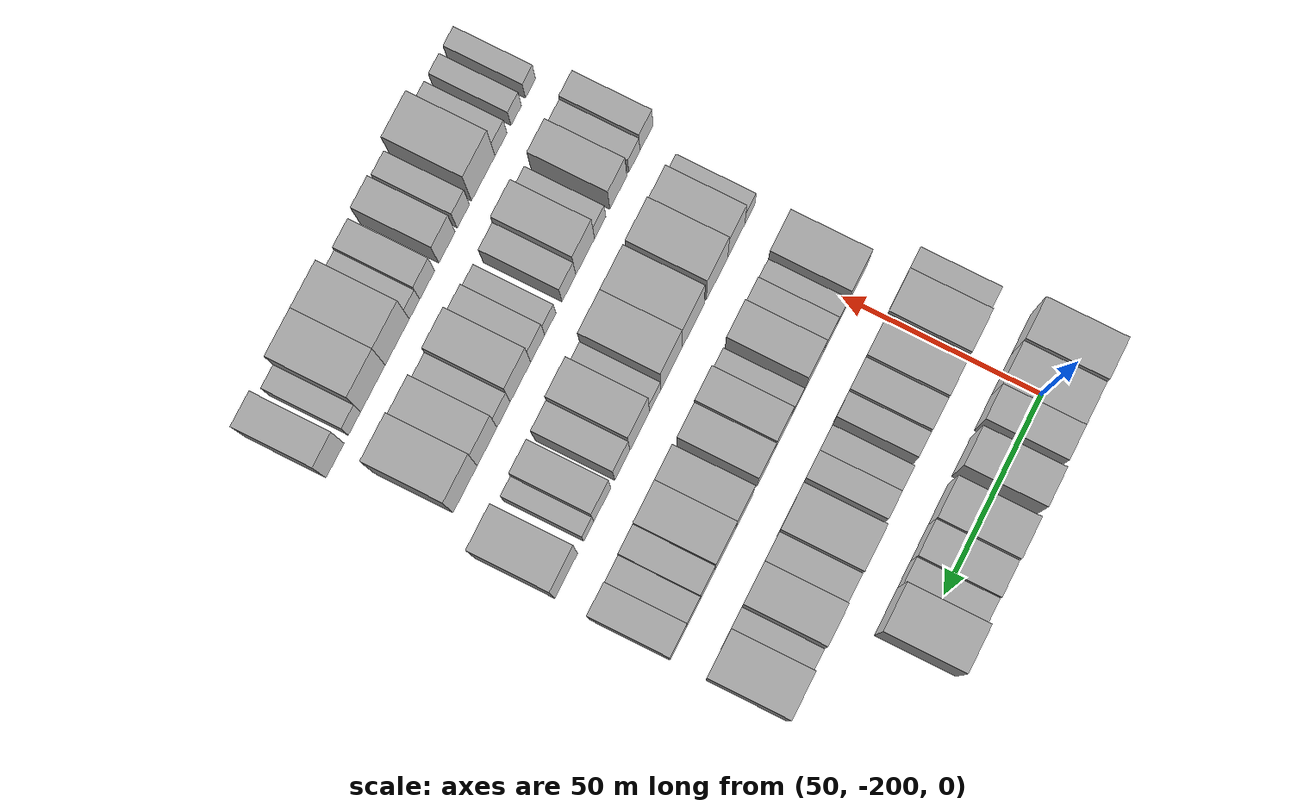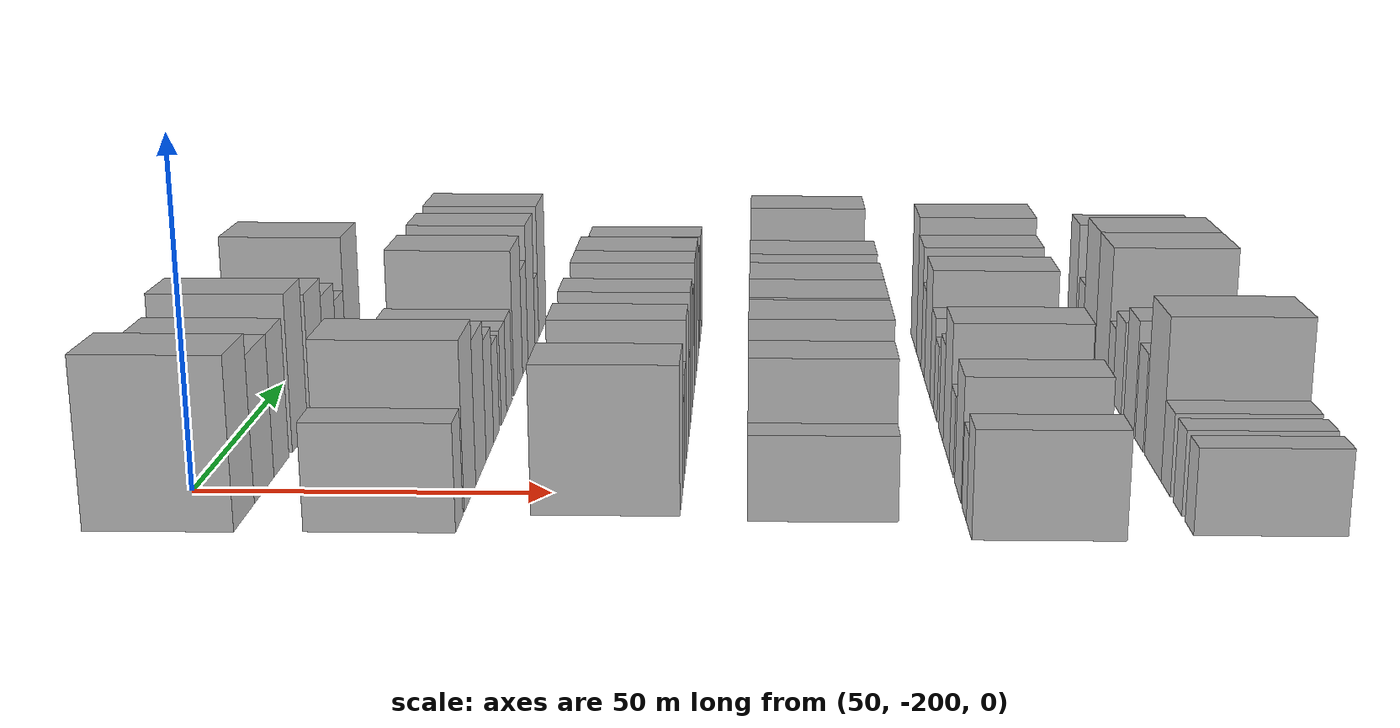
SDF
<sdf version="1.6">
 <world name="default">
  <model name="building_38">
   <static>1</static>
   <pose>50.0000 -210.2495 0 0.000000 0.000000 0.000000</pose>
   <link name="link">
    <pose>0 0 12.00 0 0 0</pose>
    <collision name="collision"><geometry><box><size>20.0000 10.3031 24.0000</size></box></geometry></collision>
    <visual name="visual">
     <cast_shadows>0</cast_shadows>
     <geometry><box><size>20.0000 10.3031 24.0000</size></box></geometry>
     <material>
      <script>
       <uri>model://HANNAS_wall/materials/scripts</uri>
       <uri>model://HANNAS_wall/materials/textures</uri>
       <name>vrc/HANNAS_wall</name>
      </script>
     </material>
    </visual>
   </link>
  </model>
  <model name="building_39">
   <static>1</static>
   <pose>50.0000 -199.8513 0 0.000000 0.000000 0.000000</pose>
   <link name="link">
    <pose>0 0 10.50 0 0 0</pose>
    <collision name="collision"><geometry><box><size>20.0000 10.4934 21.0000</size></box></geometry></collision>
    <visual name="visual">
     <cast_shadows>0</cast_shadows>
     <geometry><box><size>20.0000 10.4934 21.0000</size></box></geometry>
     <material>
      <script>
       <uri>model://HANNAS_wall/materials/scripts</uri>
       <uri>model://HANNAS_wall/materials/textures</uri>
       <name>vrc/HANNAS_wall</name>
      </script>
     </material>
    </visual>
   </link>
  </model>
  <model name="building_40">
   <static>1</static>
   <pose>50.0000 -190.2951 0 0.000000 0.000000 0.000000</pose>
   <link name="link">
    <pose>0 0 10.50 0 0 0</pose>
    <collision name="collision"><geometry><box><size>20.0000 8.6191 21.0000</size></box></geometry></collision>
    <visual name="visual">
     <cast_shadows>0</cast_shadows>
     <geometry><box><size>20.0000 8.6191 21.0000</size></box></geometry>
     <material>
      <script>
       <uri>model://HANNAS_wall/materials/scripts</uri>
       <uri>model://HANNAS_wall/materials/textures</uri>
       <name>vrc/HANNAS_wall</name>
      </script>
     </material>
    </visual>
   </link>
  </model>
  <model name="building_41">
   <static>1</static>
   <pose>50.0000 -179.1651 0 0.000000 0.000000 0.000000</pose>
   <link name="link">
    <pose>0 0 12.00 0 0 0</pose>
    <collision name="collision"><geometry><box><size>20.0000 9.6410 24.0000</size></box></geometry></collision>
    <visual name="visual">
     <cast_shadows>0</cast_shadows>
     <geometry><box><size>20.0000 9.6410 24.0000</size></box></geometry>
     <material>
      <script>
       <uri>model://HANNAS_wall/materials/scripts</uri>
       <uri>model://HANNAS_wall/materials/textures</uri>
       <name>vrc/HANNAS_wall</name>
      </script>
     </material>
    </visual>
   </link>
  </model>
  <model name="building_42">
   <static>1</static>
   <pose>50.0000 -167.2363 0 0.000000 0.000000 0.000000</pose>
   <link name="link">
    <pose>0 0 10.50 0 0 0</pose>
    <collision name="collision"><geometry><box><size>20.0000 10.2165 21.0000</size></box></geometry></collision>
    <visual name="visual">
     <cast_shadows>0</cast_shadows>
     <geometry><box><size>20.0000 10.2165 21.0000</size></box></geometry>
     <material>
      <script>
       <uri>model://HANNAS_wall/materials/scripts</uri>
       <uri>model://HANNAS_wall/materials/textures</uri>
       <name>vrc/HANNAS_wall</name>
      </script>
     </material>
    </visual>
   </link>
  </model>
  <model name="building_43">
   <static>1</static>
   <pose>50.0000 -157.6672 0 0.000000 0.000000 0.000000</pose>
   <link name="link">
    <pose>0 0 9.00 0 0 0</pose>
    <collision name="collision"><geometry><box><size>20.0000 8.9216 18.0000</size></box></geometry></collision>
    <visual name="visual">
     <cast_shadows>0</cast_shadows>
     <geometry><box><size>20.0000 8.9216 18.0000</size></box></geometry>
     <material>
      <script>
       <uri>model://HANNAS_wall/materials/scripts</uri>
       <uri>model://HANNAS_wall/materials/textures</uri>
       <name>vrc/HANNAS_wall</name>
      </script>
     </material>
    </visual>
   </link>
  </model>
  <model name="building_44">
   <static>1</static>
   <pose>50.0000 -149.8842 0 0.000000 0.000000 0.000000</pose>
   <link name="link">
    <pose>0 0 7.50 0 0 0</pose>
    <collision name="collision"><geometry><box><size>20.0000 6.6444 15.0000</size></box></geometry></collision>
    <visual name="visual">
     <cast_shadows>0</cast_shadows>
     <geometry><box><size>20.0000 6.6444 15.0000</size></box></geometry>
     <material>
      <script>
       <uri>model://HANNAS_wall/materials/scripts</uri>
       <uri>model://HANNAS_wall/materials/textures</uri>
       <name>vrc/HANNAS_wall</name>
      </script>
     </material>
    </visual>
   </link>
  </model>
  <model name="building_45">
   <static>1</static>
   <pose>50.0000 -140.6730 0 0.000000 0.000000 0.000000</pose>
   <link name="link">
    <pose>0 0 12.00 0 0 0</pose>
    <collision name="collision"><geometry><box><size>20.0000 11.7782 24.0000</size></box></geometry></collision>
    <visual name="visual">
     <cast_shadows>0</cast_shadows>
     <geometry><box><size>20.0000 11.7782 24.0000</size></box></geometry>
     <material>
      <script>
       <uri>model://HANNAS_wall/materials/scripts</uri>
       <uri>model://HANNAS_wall/materials/textures</uri>
       <name>vrc/HANNAS_wall</name>
      </script>
     </material>
    </visual>
   </link>
  </model>
  <model name="building_142">
   <static>1</static>
   <pose>79.0000 -211.9644 0 0.000000 0.000000 0.000000</pose>
   <link name="link">
    <pose>0 0 7.50 0 0 0</pose>
    <collision name="collision"><geometry><box><size>20.0000 6.2238 15.0000</size></box></geometry></collision>
    <visual name="visual">
     <cast_shadows>0</cast_shadows>
     <geometry><box><size>20.0000 6.2238 15.0000</size></box></geometry>
     <material>
      <script>
       <uri>model://HANNAS_wall/materials/scripts</uri>
       <uri>model://HANNAS_wall/materials/textures</uri>
       <name>vrc/HANNAS_wall</name>
      </script>
     </material>
    </visual>
   </link>
  </model>
  <model name="building_143">
   <static>1</static>
   <pose>79.0000 -202.5418 0 0.000000 0.000000 0.000000</pose>
   <link name="link">
    <pose>0 0 12.00 0 0 0</pose>
    <collision name="collision"><geometry><box><size>20.0000 10.6214 24.0000</size></box></geometry></collision>
    <visual name="visual">
     <cast_shadows>0</cast_shadows>
     <geometry><box><size>20.0000 10.6214 24.0000</size></box></geometry>
     <material>
      <script>
       <uri>model://HANNAS_wall/materials/scripts</uri>
       <uri>model://HANNAS_wall/materials/textures</uri>
       <name>vrc/HANNAS_wall</name>
      </script>
     </material>
    </visual>
   </link>
  </model>
  <model name="building_144">
   <static>1</static>
   <pose>79.0000 -192.1411 0 0.000000 0.000000 0.000000</pose>
   <link name="link">
    <pose>0 0 10.50 0 0 0</pose>
    <collision name="collision"><geometry><box><size>20.0000 10.1802 21.0000</size></box></geometry></collision>
    <visual name="visual">
     <cast_shadows>0</cast_shadows>
     <geometry><box><size>20.0000 10.1802 21.0000</size></box></geometry>
     <material>
      <script>
       <uri>model://HANNAS_wall/materials/scripts</uri>
       <uri>model://HANNAS_wall/materials/textures</uri>
       <name>vrc/HANNAS_wall</name>
      </script>
     </material>
    </visual>
   </link>
  </model>
  <model name="building_145">
   <static>1</static>
   <pose>79.0000 -183.0988 0 0.000000 0.000000 0.000000</pose>
   <link name="link">
    <pose>0 0 9.00 0 0 0</pose>
    <collision name="collision"><geometry><box><size>20.0000 7.9043 18.0000</size></box></geometry></collision>
    <visual name="visual">
     <cast_shadows>0</cast_shadows>
     <geometry><box><size>20.0000 7.9043 18.0000</size></box></geometry>
     <material>
      <script>
       <uri>model://HANNAS_wall/materials/scripts</uri>
       <uri>model://HANNAS_wall/materials/textures</uri>
       <name>vrc/HANNAS_wall</name>
      </script>
     </material>
    </visual>
   </link>
  </model>
  <model name="building_146">
   <static>1</static>
   <pose>79.0000 -175.9939 0 0.000000 0.000000 0.000000</pose>
   <link name="link">
    <pose>0 0 7.50 0 0 0</pose>
    <collision name="collision"><geometry><box><size>20.0000 6.3055 15.0000</size></box></geometry></collision>
    <visual name="visual">
     <cast_shadows>0</cast_shadows>
     <geometry><box><size>20.0000 6.3055 15.0000</size></box></geometry>
     <material>
      <script>
       <uri>model://HANNAS_wall/materials/scripts</uri>
       <uri>model://HANNAS_wall/materials/textures</uri>
       <name>vrc/HANNAS_wall</name>
      </script>
     </material>
    </visual>
   </link>
  </model>
  <model name="building_147">
   <static>1</static>
   <pose>79.0000 -167.7373 0 0.000000 0.000000 0.000000</pose>
   <link name="link">
    <pose>0 0 7.50 0 0 0</pose>
    <collision name="collision"><geometry><box><size>20.0000 6.2077 15.0000</size></box></geometry></collision>
    <visual name="visual">
     <cast_shadows>0</cast_shadows>
     <geometry><box><size>20.0000 6.2077 15.0000</size></box></geometry>
     <material>
      <script>
       <uri>model://HANNAS_wall/materials/scripts</uri>
       <uri>model://HANNAS_wall/materials/textures</uri>
       <name>vrc/HANNAS_wall</name>
      </script>
     </material>
    </visual>
   </link>
  </model>
  <model name="building_148">
   <static>1</static>
   <pose>79.0000 -161.1923 0 0.000000 0.000000 0.000000</pose>
   <link name="link">
    <pose>0 0 7.50 0 0 0</pose>
    <collision name="collision"><geometry><box><size>20.0000 6.8824 15.0000</size></box></geometry></collision>
    <visual name="visual">
     <cast_shadows>0</cast_shadows>
     <geometry><box><size>20.0000 6.8824 15.0000</size></box></geometry>
     <material>
      <script>
       <uri>model://HANNAS_wall/materials/scripts</uri>
       <uri>model://HANNAS_wall/materials/textures</uri>
       <name>vrc/HANNAS_wall</name>
      </script>
     </material>
    </visual>
   </link>
  </model>
  <model name="building_149">
   <static>1</static>
   <pose>79.0000 -150.0903 0 0.000000 0.000000 0.000000</pose>
   <link name="link">
    <pose>0 0 12.00 0 0 0</pose>
    <collision name="collision"><geometry><box><size>20.0000 11.3217 24.0000</size></box></geometry></collision>
    <visual name="visual">
     <cast_shadows>0</cast_shadows>
     <geometry><box><size>20.0000 11.3217 24.0000</size></box></geometry>
     <material>
      <script>
       <uri>model://HANNAS_wall/materials/scripts</uri>
       <uri>model://HANNAS_wall/materials/textures</uri>
       <name>vrc/HANNAS_wall</name>
      </script>
     </material>
    </visual>
   </link>
  </model>
  <model name="building_150">
   <static>1</static>
   <pose>79.0000 -140.6751 0 0.000000 0.000000 0.000000</pose>
   <link name="link">
    <pose>0 0 9.00 0 0 0</pose>
    <collision name="collision"><geometry><box><size>20.0000 7.5086 18.0000</size></box></geometry></collision>
    <visual name="visual">
     <cast_shadows>0</cast_shadows>
     <geometry><box><size>20.0000 7.5086 18.0000</size></box></geometry>
     <material>
      <script>
       <uri>model://HANNAS_wall/materials/scripts</uri>
       <uri>model://HANNAS_wall/materials/textures</uri>
       <name>vrc/HANNAS_wall</name>
      </script>
     </material>
    </visual>
   </link>
  </model>
  <model name="building_151">
   <static>1</static>
   <pose>79.0000 -131.7714 0 0.000000 0.000000 0.000000</pose>
   <link name="link">
    <pose>0 0 12.00 0 0 0</pose>
    <collision name="collision"><geometry><box><size>20.0000 10.2988 24.0000</size></box></geometry></collision>
    <visual name="visual">
     <cast_shadows>0</cast_shadows>
     <geometry><box><size>20.0000 10.2988 24.0000</size></box></geometry>
     <material>
      <script>
       <uri>model://HANNAS_wall/materials/scripts</uri>
       <uri>model://HANNAS_wall/materials/textures</uri>
       <name>vrc/HANNAS_wall</name>
      </script>
     </material>
    </visual>
   </link>
  </model>
  <model name="building_152">
   <static>1</static>
   <pose>79.0000 -123.7827 0 0.000000 0.000000 0.000000</pose>
   <link name="link">
    <pose>0 0 6.00 0 0 0</pose>
    <collision name="collision"><geometry><box><size>20.0000 5.6786 12.0000</size></box></geometry></collision>
    <visual name="visual">
     <cast_shadows>0</cast_shadows>
     <geometry><box><size>20.0000 5.6786 12.0000</size></box></geometry>
     <material>
      <script>
       <uri>model://HANNAS_wall/materials/scripts</uri>
       <uri>model://HANNAS_wall/materials/textures</uri>
       <name>vrc/HANNAS_wall</name>
      </script>
     </material>
    </visual>
   </link>
  </model>
  <model name="building_153">
   <static>1</static>
   <pose>79.0000 -115.1070 0 0.000000 0.000000 0.000000</pose>
   <link name="link">
    <pose>0 0 12.00 0 0 0</pose>
    <collision name="collision"><geometry><box><size>20.0000 11.6727 24.0000</size></box></geometry></collision>
    <visual name="visual">
     <cast_shadows>0</cast_shadows>
     <geometry><box><size>20.0000 11.6727 24.0000</size></box></geometry>
     <material>
      <script>
       <uri>model://HANNAS_wall/materials/scripts</uri>
       <uri>model://HANNAS_wall/materials/textures</uri>
       <name>vrc/HANNAS_wall</name>
      </script>
     </material>
    </visual>
   </link>
  </model>
  <model name="building_254">
   <static>1</static>
   <pose>108.0000 -203.3002 0 0.000000 0.000000 0.000000</pose>
   <link name="link">
    <pose>0 0 10.50 0 0 0</pose>
    <collision name="collision"><geometry><box><size>20.0000 10.4001 21.0000</size></box></geometry></collision>
    <visual name="visual">
     <cast_shadows>0</cast_shadows>
     <geometry><box><size>20.0000 10.4001 21.0000</size></box></geometry>
     <material>
      <script>
       <uri>model://HANNAS_wall/materials/scripts</uri>
       <uri>model://HANNAS_wall/materials/textures</uri>
       <name>vrc/HANNAS_wall</name>
      </script>
     </material>
    </visual>
   </link>
  </model>
  <model name="building_255">
   <static>1</static>
   <pose>108.0000 -195.4995 0 0.000000 0.000000 0.000000</pose>
   <link name="link">
    <pose>0 0 6.00 0 0 0</pose>
    <collision name="collision"><geometry><box><size>20.0000 5.2013 12.0000</size></box></geometry></collision>
    <visual name="visual">
     <cast_shadows>0</cast_shadows>
     <geometry><box><size>20.0000 5.2013 12.0000</size></box></geometry>
     <material>
      <script>
       <uri>model://HANNAS_wall/materials/scripts</uri>
       <uri>model://HANNAS_wall/materials/textures</uri>
       <name>vrc/HANNAS_wall</name>
      </script>
     </material>
    </visual>
   </link>
  </model>
  <model name="building_256">
   <static>1</static>
   <pose>108.0000 -189.5020 0 0.000000 0.000000 0.000000</pose>
   <link name="link">
    <pose>0 0 7.50 0 0 0</pose>
    <collision name="collision"><geometry><box><size>20.0000 6.7937 15.0000</size></box></geometry></collision>
    <visual name="visual">
     <cast_shadows>0</cast_shadows>
     <geometry><box><size>20.0000 6.7937 15.0000</size></box></geometry>
     <material>
      <script>
       <uri>model://HANNAS_wall/materials/scripts</uri>
       <uri>model://HANNAS_wall/materials/textures</uri>
       <name>vrc/HANNAS_wall</name>
      </script>
     </material>
    </visual>
   </link>
  </model>
  <model name="building_257">
   <static>1</static>
   <pose>108.0000 -181.4458 0 0.000000 0.000000 0.000000</pose>
   <link name="link">
    <pose>0 0 10.50 0 0 0</pose>
    <collision name="collision"><geometry><box><size>20.0000 9.3188 21.0000</size></box></geometry></collision>
    <visual name="visual">
     <cast_shadows>0</cast_shadows>
     <geometry><box><size>20.0000 9.3188 21.0000</size></box></geometry>
     <material>
      <script>
       <uri>model://HANNAS_wall/materials/scripts</uri>
       <uri>model://HANNAS_wall/materials/textures</uri>
       <name>vrc/HANNAS_wall</name>
      </script>
     </material>
    </visual>
   </link>
  </model>
  <model name="building_258">
   <static>1</static>
   <pose>108.0000 -172.8283 0 0.000000 0.000000 0.000000</pose>
   <link name="link">
    <pose>0 0 6.00 0 0 0</pose>
    <collision name="collision"><geometry><box><size>20.0000 5.9162 12.0000</size></box></geometry></collision>
    <visual name="visual">
     <cast_shadows>0</cast_shadows>
     <geometry><box><size>20.0000 5.9162 12.0000</size></box></geometry>
     <material>
      <script>
       <uri>model://HANNAS_wall/materials/scripts</uri>
       <uri>model://HANNAS_wall/materials/textures</uri>
       <name>vrc/HANNAS_wall</name>
      </script>
     </material>
    </visual>
   </link>
  </model>
  <model name="building_259">
   <static>1</static>
   <pose>108.0000 -165.6226 0 0.000000 0.000000 0.000000</pose>
   <link name="link">
    <pose>0 0 10.50 0 0 0</pose>
    <collision name="collision"><geometry><box><size>20.0000 8.4951 21.0000</size></box></geometry></collision>
    <visual name="visual">
     <cast_shadows>0</cast_shadows>
     <geometry><box><size>20.0000 8.4951 21.0000</size></box></geometry>
     <material>
      <script>
       <uri>model://HANNAS_wall/materials/scripts</uri>
       <uri>model://HANNAS_wall/materials/textures</uri>
       <name>vrc/HANNAS_wall</name>
      </script>
     </material>
    </visual>
   </link>
  </model>
  <model name="building_260">
   <static>1</static>
   <pose>108.0000 -157.0530 0 0.000000 0.000000 0.000000</pose>
   <link name="link">
    <pose>0 0 9.00 0 0 0</pose>
    <collision name="collision"><geometry><box><size>20.0000 8.6441 18.0000</size></box></geometry></collision>
    <visual name="visual">
     <cast_shadows>0</cast_shadows>
     <geometry><box><size>20.0000 8.6441 18.0000</size></box></geometry>
     <material>
      <script>
       <uri>model://HANNAS_wall/materials/scripts</uri>
       <uri>model://HANNAS_wall/materials/textures</uri>
       <name>vrc/HANNAS_wall</name>
      </script>
     </material>
    </visual>
   </link>
  </model>
  <model name="building_261">
   <static>1</static>
   <pose>108.0000 -146.4417 0 0.000000 0.000000 0.000000</pose>
   <link name="link">
    <pose>0 0 10.50 0 0 0</pose>
    <collision name="collision"><geometry><box><size>20.0000 8.5784 21.0000</size></box></geometry></collision>
    <visual name="visual">
     <cast_shadows>0</cast_shadows>
     <geometry><box><size>20.0000 8.5784 21.0000</size></box></geometry>
     <material>
      <script>
       <uri>model://HANNAS_wall/materials/scripts</uri>
       <uri>model://HANNAS_wall/materials/textures</uri>
       <name>vrc/HANNAS_wall</name>
      </script>
     </material>
    </visual>
   </link>
  </model>
  <model name="building_262">
   <static>1</static>
   <pose>108.0000 -136.9209 0 0.000000 0.000000 0.000000</pose>
   <link name="link">
    <pose>0 0 10.50 0 0 0</pose>
    <collision name="collision"><geometry><box><size>20.0000 10.4634 21.0000</size></box></geometry></collision>
    <visual name="visual">
     <cast_shadows>0</cast_shadows>
     <geometry><box><size>20.0000 10.4634 21.0000</size></box></geometry>
     <material>
      <script>
       <uri>model://HANNAS_wall/materials/scripts</uri>
       <uri>model://HANNAS_wall/materials/textures</uri>
       <name>vrc/HANNAS_wall</name>
      </script>
     </material>
    </visual>
   </link>
  </model>
  <model name="building_263">
   <static>1</static>
   <pose>108.0000 -128.0794 0 0.000000 0.000000 0.000000</pose>
   <link name="link">
    <pose>0 0 9.00 0 0 0</pose>
    <collision name="collision"><geometry><box><size>20.0000 7.2196 18.0000</size></box></geometry></collision>
    <visual name="visual">
     <cast_shadows>0</cast_shadows>
     <geometry><box><size>20.0000 7.2196 18.0000</size></box></geometry>
     <material>
      <script>
       <uri>model://HANNAS_wall/materials/scripts</uri>
       <uri>model://HANNAS_wall/materials/textures</uri>
       <name>vrc/HANNAS_wall</name>
      </script>
     </material>
    </visual>
   </link>
  </model>
  <model name="building_264">
   <static>1</static>
   <pose>108.0000 -121.1554 0 0.000000 0.000000 0.000000</pose>
   <link name="link">
    <pose>0 0 7.50 0 0 0</pose>
    <collision name="collision"><geometry><box><size>20.0000 6.6282 15.0000</size></box></geometry></collision>
    <visual name="visual">
     <cast_shadows>0</cast_shadows>
     <geometry><box><size>20.0000 6.6282 15.0000</size></box></geometry>
     <material>
      <script>
       <uri>model://HANNAS_wall/materials/scripts</uri>
       <uri>model://HANNAS_wall/materials/textures</uri>
       <name>vrc/HANNAS_wall</name>
      </script>
     </material>
    </visual>
   </link>
  </model>
  <model name="building_265">
   <static>1</static>
   <pose>108.0000 -113.7238 0 0.000000 0.000000 0.000000</pose>
   <link name="link">
    <pose>0 0 9.00 0 0 0</pose>
    <collision name="collision"><geometry><box><size>20.0000 8.2349 18.0000</size></box></geometry></collision>
    <visual name="visual">
     <cast_shadows>0</cast_shadows>
     <geometry><box><size>20.0000 8.2349 18.0000</size></box></geometry>
     <material>
      <script>
       <uri>model://HANNAS_wall/materials/scripts</uri>
       <uri>model://HANNAS_wall/materials/textures</uri>
       <name>vrc/HANNAS_wall</name>
      </script>
     </material>
    </visual>
   </link>
  </model>
  <model name="building_370">
   <static>1</static>
   <pose>137.0000 -207.5998 0 0.000000 0.000000 0.000000</pose>
   <link name="link">
    <pose>0 0 6.00 0 0 0</pose>
    <collision name="collision"><geometry><box><size>20.0000 5.1844 12.0000</size></box></geometry></collision>
    <visual name="visual">
     <cast_shadows>0</cast_shadows>
     <geometry><box><size>20.0000 5.1844 12.0000</size></box></geometry>
     <material>
      <script>
       <uri>model://HANNAS_wall/materials/scripts</uri>
       <uri>model://HANNAS_wall/materials/textures</uri>
       <name>vrc/HANNAS_wall</name>
      </script>
     </material>
    </visual>
   </link>
  </model>
  <model name="building_371">
   <static>1</static>
   <pose>137.0000 -200.6758 0 0.000000 0.000000 0.000000</pose>
   <link name="link">
    <pose>0 0 10.50 0 0 0</pose>
    <collision name="collision"><geometry><box><size>20.0000 8.6635 21.0000</size></box></geometry></collision>
    <visual name="visual">
     <cast_shadows>0</cast_shadows>
     <geometry><box><size>20.0000 8.6635 21.0000</size></box></geometry>
     <material>
      <script>
       <uri>model://HANNAS_wall/materials/scripts</uri>
       <uri>model://HANNAS_wall/materials/textures</uri>
       <name>vrc/HANNAS_wall</name>
      </script>
     </material>
    </visual>
   </link>
  </model>
  <model name="building_372">
   <static>1</static>
   <pose>137.0000 -190.9224 0 0.000000 0.000000 0.000000</pose>
   <link name="link">
    <pose>0 0 12.00 0 0 0</pose>
    <collision name="collision"><geometry><box><size>20.0000 10.8433 24.0000</size></box></geometry></collision>
    <visual name="visual">
     <cast_shadows>0</cast_shadows>
     <geometry><box><size>20.0000 10.8433 24.0000</size></box></geometry>
     <material>
      <script>
       <uri>model://HANNAS_wall/materials/scripts</uri>
       <uri>model://HANNAS_wall/materials/textures</uri>
       <name>vrc/HANNAS_wall</name>
      </script>
     </material>
    </visual>
   </link>
  </model>
  <model name="building_373">
   <static>1</static>
   <pose>137.0000 -178.9751 0 0.000000 0.000000 0.000000</pose>
   <link name="link">
    <pose>0 0 12.00 0 0 0</pose>
    <collision name="collision"><geometry><box><size>20.0000 11.0513 24.0000</size></box></geometry></collision>
    <visual name="visual">
     <cast_shadows>0</cast_shadows>
     <geometry><box><size>20.0000 11.0513 24.0000</size></box></geometry>
     <material>
      <script>
       <uri>model://HANNAS_wall/materials/scripts</uri>
       <uri>model://HANNAS_wall/materials/textures</uri>
       <name>vrc/HANNAS_wall</name>
      </script>
     </material>
    </visual>
   </link>
  </model>
  <model name="building_374">
   <static>1</static>
   <pose>137.0000 -168.0917 0 0.000000 0.000000 0.000000</pose>
   <link name="link">
    <pose>0 0 12.00 0 0 0</pose>
    <collision name="collision"><geometry><box><size>20.0000 10.7155 24.0000</size></box></geometry></collision>
    <visual name="visual">
     <cast_shadows>0</cast_shadows>
     <geometry><box><size>20.0000 10.7155 24.0000</size></box></geometry>
     <material>
      <script>
       <uri>model://HANNAS_wall/materials/scripts</uri>
       <uri>model://HANNAS_wall/materials/textures</uri>
       <name>vrc/HANNAS_wall</name>
      </script>
     </material>
    </visual>
   </link>
  </model>
  <model name="building_375">
   <static>1</static>
   <pose>137.0000 -159.8637 0 0.000000 0.000000 0.000000</pose>
   <link name="link">
    <pose>0 0 6.00 0 0 0</pose>
    <collision name="collision"><geometry><box><size>20.0000 5.7406 12.0000</size></box></geometry></collision>
    <visual name="visual">
     <cast_shadows>0</cast_shadows>
     <geometry><box><size>20.0000 5.7406 12.0000</size></box></geometry>
     <material>
      <script>
       <uri>model://HANNAS_wall/materials/scripts</uri>
       <uri>model://HANNAS_wall/materials/textures</uri>
       <name>vrc/HANNAS_wall</name>
      </script>
     </material>
    </visual>
   </link>
  </model>
  <model name="building_376">
   <static>1</static>
   <pose>137.0000 -152.1276 0 0.000000 0.000000 0.000000</pose>
   <link name="link">
    <pose>0 0 12.00 0 0 0</pose>
    <collision name="collision"><geometry><box><size>20.0000 9.7316 24.0000</size></box></geometry></collision>
    <visual name="visual">
     <cast_shadows>0</cast_shadows>
     <geometry><box><size>20.0000 9.7316 24.0000</size></box></geometry>
     <material>
      <script>
       <uri>model://HANNAS_wall/materials/scripts</uri>
       <uri>model://HANNAS_wall/materials/textures</uri>
       <name>vrc/HANNAS_wall</name>
      </script>
     </material>
    </visual>
   </link>
  </model>
  <model name="building_377">
   <static>1</static>
   <pose>137.0000 -143.5225 0 0.000000 0.000000 0.000000</pose>
   <link name="link">
    <pose>0 0 9.00 0 0 0</pose>
    <collision name="collision"><geometry><box><size>20.0000 7.4785 18.0000</size></box></geometry></collision>
    <visual name="visual">
     <cast_shadows>0</cast_shadows>
     <geometry><box><size>20.0000 7.4785 18.0000</size></box></geometry>
     <material>
      <script>
       <uri>model://HANNAS_wall/materials/scripts</uri>
       <uri>model://HANNAS_wall/materials/textures</uri>
       <name>vrc/HANNAS_wall</name>
      </script>
     </material>
    </visual>
   </link>
  </model>
  <model name="building_378">
   <static>1</static>
   <pose>137.0000 -133.6009 0 0.000000 0.000000 0.000000</pose>
   <link name="link">
    <pose>0 0 9.00 0 0 0</pose>
    <collision name="collision"><geometry><box><size>20.0000 8.3647 18.0000</size></box></geometry></collision>
    <visual name="visual">
     <cast_shadows>0</cast_shadows>
     <geometry><box><size>20.0000 8.3647 18.0000</size></box></geometry>
     <material>
      <script>
       <uri>model://HANNAS_wall/materials/scripts</uri>
       <uri>model://HANNAS_wall/materials/textures</uri>
       <name>vrc/HANNAS_wall</name>
      </script>
     </material>
    </visual>
   </link>
  </model>
  <model name="building_379">
   <static>1</static>
   <pose>137.0000 -126.9675 0 0.000000 0.000000 0.000000</pose>
   <link name="link">
    <pose>0 0 6.00 0 0 0</pose>
    <collision name="collision"><geometry><box><size>20.0000 4.9020 12.0000</size></box></geometry></collision>
    <visual name="visual">
     <cast_shadows>0</cast_shadows>
     <geometry><box><size>20.0000 4.9020 12.0000</size></box></geometry>
     <material>
      <script>
       <uri>model://HANNAS_wall/materials/scripts</uri>
       <uri>model://HANNAS_wall/materials/textures</uri>
       <name>vrc/HANNAS_wall</name>
      </script>
     </material>
    </visual>
   </link>
  </model>
  <model name="building_380">
   <static>1</static>
   <pose>137.0000 -115.9178 0 0.000000 0.000000 0.000000</pose>
   <link name="link">
    <pose>0 0 12.00 0 0 0</pose>
    <collision name="collision"><geometry><box><size>20.0000 11.1974 24.0000</size></box></geometry></collision>
    <visual name="visual">
     <cast_shadows>0</cast_shadows>
     <geometry><box><size>20.0000 11.1974 24.0000</size></box></geometry>
     <material>
      <script>
       <uri>model://HANNAS_wall/materials/scripts</uri>
       <uri>model://HANNAS_wall/materials/textures</uri>
       <name>vrc/HANNAS_wall</name>
      </script>
     </material>
    </visual>
   </link>
  </model>
  <model name="building_481">
   <static>1</static>
   <pose>166.0000 -212.9373 0 0.000000 0.000000 0.000000</pose>
   <link name="link">
    <pose>0 0 7.50 0 0 0</pose>
    <collision name="collision"><geometry><box><size>20.0000 6.5293 15.0000</size></box></geometry></collision>
    <visual name="visual">
     <cast_shadows>0</cast_shadows>
     <geometry><box><size>20.0000 6.5293 15.0000</size></box></geometry>
     <material>
      <script>
       <uri>model://HANNAS_wall/materials/scripts</uri>
       <uri>model://HANNAS_wall/materials/textures</uri>
       <name>vrc/HANNAS_wall</name>
      </script>
     </material>
    </visual>
   </link>
  </model>
  <model name="building_482">
   <static>1</static>
   <pose>166.0000 -206.8613 0 0.000000 0.000000 0.000000</pose>
   <link name="link">
    <pose>0 0 6.00 0 0 0</pose>
    <collision name="collision"><geometry><box><size>20.0000 5.6227 12.0000</size></box></geometry></collision>
    <visual name="visual">
     <cast_shadows>0</cast_shadows>
     <geometry><box><size>20.0000 5.6227 12.0000</size></box></geometry>
     <material>
      <script>
       <uri>model://HANNAS_wall/materials/scripts</uri>
       <uri>model://HANNAS_wall/materials/textures</uri>
       <name>vrc/HANNAS_wall</name>
      </script>
     </material>
    </visual>
   </link>
  </model>
  <model name="building_483">
   <static>1</static>
   <pose>166.0000 -198.7721 0 0.000000 0.000000 0.000000</pose>
   <link name="link">
    <pose>0 0 9.00 0 0 0</pose>
    <collision name="collision"><geometry><box><size>20.0000 8.5557 18.0000</size></box></geometry></collision>
    <visual name="visual">
     <cast_shadows>0</cast_shadows>
     <geometry><box><size>20.0000 8.5557 18.0000</size></box></geometry>
     <material>
      <script>
       <uri>model://HANNAS_wall/materials/scripts</uri>
       <uri>model://HANNAS_wall/materials/textures</uri>
       <name>vrc/HANNAS_wall</name>
      </script>
     </material>
    </visual>
   </link>
  </model>
  <model name="building_484">
   <static>1</static>
   <pose>166.0000 -189.6660 0 0.000000 0.000000 0.000000</pose>
   <link name="link">
    <pose>0 0 6.00 0 0 0</pose>
    <collision name="collision"><geometry><box><size>20.0000 5.6565 12.0000</size></box></geometry></collision>
    <visual name="visual">
     <cast_shadows>0</cast_shadows>
     <geometry><box><size>20.0000 5.6565 12.0000</size></box></geometry>
     <material>
      <script>
       <uri>model://HANNAS_wall/materials/scripts</uri>
       <uri>model://HANNAS_wall/materials/textures</uri>
       <name>vrc/HANNAS_wall</name>
      </script>
     </material>
    </visual>
   </link>
  </model>
  <model name="building_485">
   <static>1</static>
   <pose>166.0000 -182.1705 0 0.000000 0.000000 0.000000</pose>
   <link name="link">
    <pose>0 0 10.50 0 0 0</pose>
    <collision name="collision"><geometry><box><size>20.0000 9.3344 21.0000</size></box></geometry></collision>
    <visual name="visual">
     <cast_shadows>0</cast_shadows>
     <geometry><box><size>20.0000 9.3344 21.0000</size></box></geometry>
     <material>
      <script>
       <uri>model://HANNAS_wall/materials/scripts</uri>
       <uri>model://HANNAS_wall/materials/textures</uri>
       <name>vrc/HANNAS_wall</name>
      </script>
     </material>
    </visual>
   </link>
  </model>
  <model name="building_486">
   <static>1</static>
   <pose>166.0000 -174.0651 0 0.000000 0.000000 0.000000</pose>
   <link name="link">
    <pose>0 0 7.50 0 0 0</pose>
    <collision name="collision"><geometry><box><size>20.0000 6.8764 15.0000</size></box></geometry></collision>
    <visual name="visual">
     <cast_shadows>0</cast_shadows>
     <geometry><box><size>20.0000 6.8764 15.0000</size></box></geometry>
     <material>
      <script>
       <uri>model://HANNAS_wall/materials/scripts</uri>
       <uri>model://HANNAS_wall/materials/textures</uri>
       <name>vrc/HANNAS_wall</name>
      </script>
     </material>
    </visual>
   </link>
  </model>
  <model name="building_487">
   <static>1</static>
   <pose>166.0000 -164.8232 0 0.000000 0.000000 0.000000</pose>
   <link name="link">
    <pose>0 0 6.00 0 0 0</pose>
    <collision name="collision"><geometry><box><size>20.0000 5.6074 12.0000</size></box></geometry></collision>
    <visual name="visual">
     <cast_shadows>0</cast_shadows>
     <geometry><box><size>20.0000 5.6074 12.0000</size></box></geometry>
     <material>
      <script>
       <uri>model://HANNAS_wall/materials/scripts</uri>
       <uri>model://HANNAS_wall/materials/textures</uri>
       <name>vrc/HANNAS_wall</name>
      </script>
     </material>
    </visual>
   </link>
  </model>
  <model name="building_488">
   <static>1</static>
   <pose>166.0000 -158.5657 0 0.000000 0.000000 0.000000</pose>
   <link name="link">
    <pose>0 0 7.50 0 0 0</pose>
    <collision name="collision"><geometry><box><size>20.0000 6.9076 15.0000</size></box></geometry></collision>
    <visual name="visual">
     <cast_shadows>0</cast_shadows>
     <geometry><box><size>20.0000 6.9076 15.0000</size></box></geometry>
     <material>
      <script>
       <uri>model://HANNAS_wall/materials/scripts</uri>
       <uri>model://HANNAS_wall/materials/textures</uri>
       <name>vrc/HANNAS_wall</name>
      </script>
     </material>
    </visual>
   </link>
  </model>
  <model name="building_489">
   <static>1</static>
   <pose>166.0000 -150.0704 0 0.000000 0.000000 0.000000</pose>
   <link name="link">
    <pose>0 0 10.50 0 0 0</pose>
    <collision name="collision"><geometry><box><size>20.0000 10.0830 21.0000</size></box></geometry></collision>
    <visual name="visual">
     <cast_shadows>0</cast_shadows>
     <geometry><box><size>20.0000 10.0830 21.0000</size></box></geometry>
     <material>
      <script>
       <uri>model://HANNAS_wall/materials/scripts</uri>
       <uri>model://HANNAS_wall/materials/textures</uri>
       <name>vrc/HANNAS_wall</name>
      </script>
     </material>
    </visual>
   </link>
  </model>
  <model name="building_490">
   <static>1</static>
   <pose>166.0000 -141.7937 0 0.000000 0.000000 0.000000</pose>
   <link name="link">
    <pose>0 0 7.50 0 0 0</pose>
    <collision name="collision"><geometry><box><size>20.0000 6.4705 15.0000</size></box></geometry></collision>
    <visual name="visual">
     <cast_shadows>0</cast_shadows>
     <geometry><box><size>20.0000 6.4705 15.0000</size></box></geometry>
     <material>
      <script>
       <uri>model://HANNAS_wall/materials/scripts</uri>
       <uri>model://HANNAS_wall/materials/textures</uri>
       <name>vrc/HANNAS_wall</name>
      </script>
     </material>
    </visual>
   </link>
  </model>
  <model name="building_491">
   <static>1</static>
   <pose>166.0000 -133.7052 0 0.000000 0.000000 0.000000</pose>
   <link name="link">
    <pose>0 0 10.50 0 0 0</pose>
    <collision name="collision"><geometry><box><size>20.0000 9.7065 21.0000</size></box></geometry></collision>
    <visual name="visual">
     <cast_shadows>0</cast_shadows>
     <geometry><box><size>20.0000 9.7065 21.0000</size></box></geometry>
     <material>
      <script>
       <uri>model://HANNAS_wall/materials/scripts</uri>
       <uri>model://HANNAS_wall/materials/textures</uri>
       <name>vrc/HANNAS_wall</name>
      </script>
     </material>
    </visual>
   </link>
  </model>
  <model name="building_492">
   <static>1</static>
   <pose>166.0000 -122.9626 0 0.000000 0.000000 0.000000</pose>
   <link name="link">
    <pose>0 0 12.00 0 0 0</pose>
    <collision name="collision"><geometry><box><size>20.0000 11.7786 24.0000</size></box></geometry></collision>
    <visual name="visual">
     <cast_shadows>0</cast_shadows>
     <geometry><box><size>20.0000 11.7786 24.0000</size></box></geometry>
     <material>
      <script>
       <uri>model://HANNAS_wall/materials/scripts</uri>
       <uri>model://HANNAS_wall/materials/textures</uri>
       <name>vrc/HANNAS_wall</name>
      </script>
     </material>
    </visual>
   </link>
  </model>
  <model name="building_593">
   <static>1</static>
   <pose>195.0000 -211.4931 0 0.000000 0.000000 0.000000</pose>
   <link name="link">
    <pose>0 0 6.00 0 0 0</pose>
    <collision name="collision"><geometry><box><size>20.0000 5.0321 12.0000</size></box></geometry></collision>
    <visual name="visual">
     <cast_shadows>0</cast_shadows>
     <geometry><box><size>20.0000 5.0321 12.0000</size></box></geometry>
     <material>
      <script>
       <uri>model://HANNAS_wall/materials/scripts</uri>
       <uri>model://HANNAS_wall/materials/textures</uri>
       <name>vrc/HANNAS_wall</name>
      </script>
     </material>
    </visual>
   </link>
  </model>
  <model name="building_594">
   <static>1</static>
   <pose>195.0000 -204.3767 0 0.000000 0.000000 0.000000</pose>
   <link name="link">
    <pose>0 0 6.00 0 0 0</pose>
    <collision name="collision"><geometry><box><size>20.0000 5.2008 12.0000</size></box></geometry></collision>
    <visual name="visual">
     <cast_shadows>0</cast_shadows>
     <geometry><box><size>20.0000 5.2008 12.0000</size></box></geometry>
     <material>
      <script>
       <uri>model://HANNAS_wall/materials/scripts</uri>
       <uri>model://HANNAS_wall/materials/textures</uri>
       <name>vrc/HANNAS_wall</name>
      </script>
     </material>
    </visual>
   </link>
  </model>
  <model name="building_595">
   <static>1</static>
   <pose>195.0000 -196.7807 0 0.000000 0.000000 0.000000</pose>
   <link name="link">
    <pose>0 0 6.00 0 0 0</pose>
    <collision name="collision"><geometry><box><size>20.0000 5.9913 12.0000</size></box></geometry></collision>
    <visual name="visual">
     <cast_shadows>0</cast_shadows>
     <geometry><box><size>20.0000 5.9913 12.0000</size></box></geometry>
     <material>
      <script>
       <uri>model://HANNAS_wall/materials/scripts</uri>
       <uri>model://HANNAS_wall/materials/textures</uri>
       <name>vrc/HANNAS_wall</name>
      </script>
     </material>
    </visual>
   </link>
  </model>
  <model name="building_596">
   <static>1</static>
   <pose>195.0000 -187.9586 0 0.000000 0.000000 0.000000</pose>
   <link name="link">
    <pose>0 0 12.00 0 0 0</pose>
    <collision name="collision"><geometry><box><size>20.0000 11.6529 24.0000</size></box></geometry></collision>
    <visual name="visual">
     <cast_shadows>0</cast_shadows>
     <geometry><box><size>20.0000 11.6529 24.0000</size></box></geometry>
     <material>
      <script>
       <uri>model://HANNAS_wall/materials/scripts</uri>
       <uri>model://HANNAS_wall/materials/textures</uri>
       <name>vrc/HANNAS_wall</name>
      </script>
     </material>
    </visual>
   </link>
  </model>
  <model name="building_597">
   <static>1</static>
   <pose>195.0000 -178.0945 0 0.000000 0.000000 0.000000</pose>
   <link name="link">
    <pose>0 0 7.50 0 0 0</pose>
    <collision name="collision"><geometry><box><size>20.0000 6.0752 15.0000</size></box></geometry></collision>
    <visual name="visual">
     <cast_shadows>0</cast_shadows>
     <geometry><box><size>20.0000 6.0752 15.0000</size></box></geometry>
     <material>
      <script>
       <uri>model://HANNAS_wall/materials/scripts</uri>
       <uri>model://HANNAS_wall/materials/textures</uri>
       <name>vrc/HANNAS_wall</name>
      </script>
     </material>
    </visual>
   </link>
  </model>
  <model name="building_598">
   <static>1</static>
   <pose>195.0000 -170.0315 0 0.000000 0.000000 0.000000</pose>
   <link name="link">
    <pose>0 0 9.00 0 0 0</pose>
    <collision name="collision"><geometry><box><size>20.0000 8.0509 18.0000</size></box></geometry></collision>
    <visual name="visual">
     <cast_shadows>0</cast_shadows>
     <geometry><box><size>20.0000 8.0509 18.0000</size></box></geometry>
     <material>
      <script>
       <uri>model://HANNAS_wall/materials/scripts</uri>
       <uri>model://HANNAS_wall/materials/textures</uri>
       <name>vrc/HANNAS_wall</name>
      </script>
     </material>
    </visual>
   </link>
  </model>
  <model name="building_599">
   <static>1</static>
   <pose>195.0000 -160.3407 0 0.000000 0.000000 0.000000</pose>
   <link name="link">
    <pose>0 0 7.50 0 0 0</pose>
    <collision name="collision"><geometry><box><size>20.0000 7.3306 15.0000</size></box></geometry></collision>
    <visual name="visual">
     <cast_shadows>0</cast_shadows>
     <geometry><box><size>20.0000 7.3306 15.0000</size></box></geometry>
     <material>
      <script>
       <uri>model://HANNAS_wall/materials/scripts</uri>
       <uri>model://HANNAS_wall/materials/textures</uri>
       <name>vrc/HANNAS_wall</name>
      </script>
     </material>
    </visual>
   </link>
  </model>
  <model name="building_600">
   <static>1</static>
   <pose>195.0000 -154.1233 0 0.000000 0.000000 0.000000</pose>
   <link name="link">
    <pose>0 0 6.00 0 0 0</pose>
    <collision name="collision"><geometry><box><size>20.0000 5.1042 12.0000</size></box></geometry></collision>
    <visual name="visual">
     <cast_shadows>0</cast_shadows>
     <geometry><box><size>20.0000 5.1042 12.0000</size></box></geometry>
     <material>
      <script>
       <uri>model://HANNAS_wall/materials/scripts</uri>
       <uri>model://HANNAS_wall/materials/textures</uri>
       <name>vrc/HANNAS_wall</name>
      </script>
     </material>
    </visual>
   </link>
  </model>
  <model name="building_601">
   <static>1</static>
   <pose>195.0000 -145.7089 0 0.000000 0.000000 0.000000</pose>
   <link name="link">
    <pose>0 0 12.00 0 0 0</pose>
    <collision name="collision"><geometry><box><size>20.0000 11.7246 24.0000</size></box></geometry></collision>
    <visual name="visual">
     <cast_shadows>0</cast_shadows>
     <geometry><box><size>20.0000 11.7246 24.0000</size></box></geometry>
     <material>
      <script>
       <uri>model://HANNAS_wall/materials/scripts</uri>
       <uri>model://HANNAS_wall/materials/textures</uri>
       <name>vrc/HANNAS_wall</name>
      </script>
     </material>
    </visual>
   </link>
  </model>
  <model name="building_602">
   <static>1</static>
   <pose>195.0000 -133.8898 0 0.000000 0.000000 0.000000</pose>
   <link name="link">
    <pose>0 0 12.00 0 0 0</pose>
    <collision name="collision"><geometry><box><size>20.0000 11.9137 24.0000</size></box></geometry></collision>
    <visual name="visual">
     <cast_shadows>0</cast_shadows>
     <geometry><box><size>20.0000 11.9137 24.0000</size></box></geometry>
     <material>
      <script>
       <uri>model://HANNAS_wall/materials/scripts</uri>
       <uri>model://HANNAS_wall/materials/textures</uri>
       <name>vrc/HANNAS_wall</name>
      </script>
     </material>
    </visual>
   </link>
  </model>
  <model name="building_603">
   <static>1</static>
   <pose>195.0000 -124.9839 0 0.000000 0.000000 0.000000</pose>
   <link name="link">
    <pose>0 0 6.00 0 0 0</pose>
    <collision name="collision"><geometry><box><size>20.0000 5.8980 12.0000</size></box></geometry></collision>
    <visual name="visual">
     <cast_shadows>0</cast_shadows>
     <geometry><box><size>20.0000 5.8980 12.0000</size></box></geometry>
     <material>
      <script>
       <uri>model://HANNAS_wall/materials/scripts</uri>
       <uri>model://HANNAS_wall/materials/textures</uri>
       <name>vrc/HANNAS_wall</name>
      </script>
     </material>
    </visual>
   </link>
  </model>
  <model name="building_604">
   <static>1</static>
   <pose>195.0000 -115.6760 0 0.000000 0.000000 0.000000</pose>
   <link name="link">
    <pose>0 0 10.50 0 0 0</pose>
    <collision name="collision"><geometry><box><size>20.0000 8.7178 21.0000</size></box></geometry></collision>
    <visual name="visual">
     <cast_shadows>0</cast_shadows>
     <geometry><box><size>20.0000 8.7178 21.0000</size></box></geometry>
     <material>
      <script>
       <uri>model://HANNAS_wall/materials/scripts</uri>
       <uri>model://HANNAS_wall/materials/textures</uri>
       <name>vrc/HANNAS_wall</name>
      </script>
     </material>
    </visual>
   </link>
  </model>
 </world>
</sdf>
